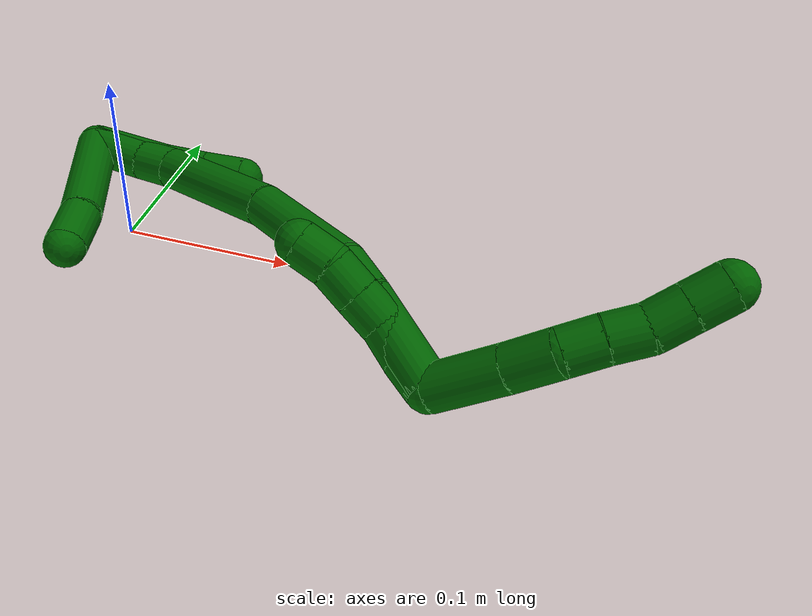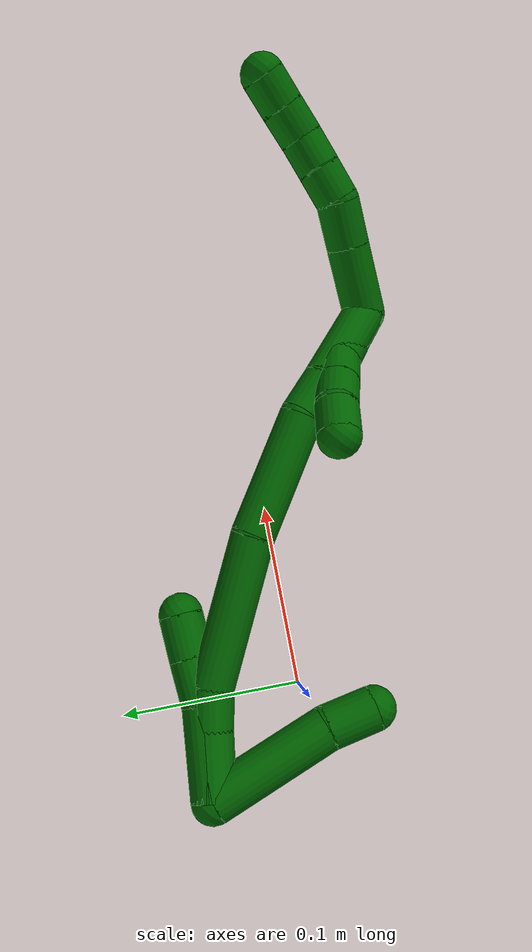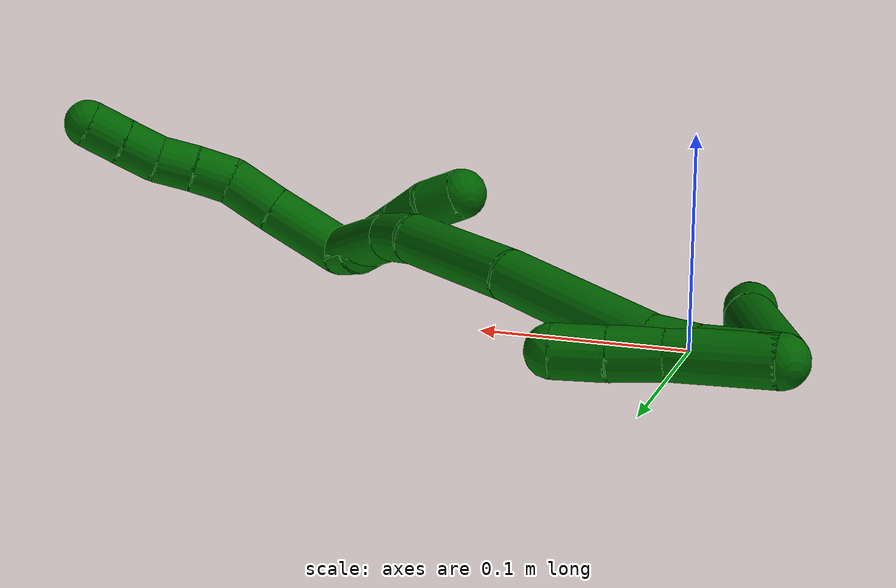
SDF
<sdf version="1.7">
 <world name="default">
  <model name="6">
   <static>0</static>
   <link name="6">
    <collision name="collision-cylinder-e_1_2_8">
     <pose>0.015691 0.005966 0.012447 -0.446975 0.849312 -0.204823</pose>
     <geometry><cylinder><radius>0.0125</radius><length>0.041796</length></cylinder></geometry>
     <surface>
      <friction><ode><mu>1.16</mu><mu2>1.16</mu2><slip1>0</slip1><slip2>0</slip2></ode></friction>
      <contact><ode><kp>1e+06</kp><kd>1</kd><max_vel>0</max_vel><min_depth>0.001</min_depth></ode></contact>
     </surface>
    </collision>
    <visual name="visual-cylinder-e_1_2_8">
     <pose>0.015691 0.005966 0.012447 -0.446975 0.849312 -0.204823</pose>
     <geometry><cylinder><radius>0.0125</radius><length>0.041796</length></cylinder></geometry>
     <material><ambient>0 0.392157 0.003922 1</ambient></material>
    </visual>
    <collision name="collision-cylinder-e_2_8_9">
     <pose>0.041317 0.016258 0.032953 -0.492536 0.826742 -0.219638</pose>
     <geometry><cylinder><radius>0.0125</radius><length>0.027009</length></cylinder></geometry>
     <surface>
      <friction><ode><mu>1.16</mu><mu2>1.16</mu2><slip1>0</slip1><slip2>0</slip2></ode></friction>
      <contact><ode><kp>1e+06</kp><kd>1</kd><max_vel>0</max_vel><min_depth>0.001</min_depth></ode></contact>
     </surface>
    </collision>
    <visual name="visual-cylinder-e_2_8_9">
     <pose>0.041317 0.016258 0.032953 -0.492536 0.826742 -0.219638</pose>
     <geometry><cylinder><radius>0.0125</radius><length>0.027009</length></cylinder></geometry>
     <material><ambient>0 0.392157 0.003922 1</ambient></material>
    </visual>
    <collision name="collision-cylinder-e_3_9_10">
     <pose>0.060716 0.022542 0.044647 -0.49452 1.15939 -0.327582</pose>
     <geometry><cylinder><radius>0.0125</radius><length>0.020648</length></cylinder></geometry>
     <surface>
      <friction><ode><mu>1.16</mu><mu2>1.16</mu2><slip1>0</slip1><slip2>0</slip2></ode></friction>
      <contact><ode><kp>1e+06</kp><kd>1</kd><max_vel>0</max_vel><min_depth>0.001</min_depth></ode></contact>
     </surface>
    </collision>
    <visual name="visual-cylinder-e_3_9_10">
     <pose>0.060716 0.022542 0.044647 -0.49452 1.15939 -0.327582</pose>
     <geometry><cylinder><radius>0.0125</radius><length>0.020648</length></cylinder></geometry>
     <material><ambient>0 0.392157 0.003922 1</ambient></material>
    </visual>
    <collision name="collision-cylinder-e_4_10_11">
     <pose>0.079531 0.025777 0.051781 -0.349509 1.19172 -0.238301</pose>
     <geometry><cylinder><radius>0.0125</radius><length>0.020136</length></cylinder></geometry>
     <surface>
      <friction><ode><mu>1.16</mu><mu2>1.16</mu2><slip1>0</slip1><slip2>0</slip2></ode></friction>
      <contact><ode><kp>1e+06</kp><kd>1</kd><max_vel>0</max_vel><min_depth>0.001</min_depth></ode></contact>
     </surface>
    </collision>
    <visual name="visual-cylinder-e_4_10_11">
     <pose>0.079531 0.025777 0.051781 -0.349509 1.19172 -0.238301</pose>
     <geometry><cylinder><radius>0.0125</radius><length>0.020136</length></cylinder></geometry>
     <material><ambient>0 0.392157 0.003922 1</ambient></material>
    </visual>
    <collision name="collision-cylinder-e_5_11_12">
     <pose>0.097773 0.030956 0.058368 -0.901634 1.06049 -0.55302</pose>
     <geometry><cylinder><radius>0.0125</radius><length>0.020374</length></cylinder></geometry>
     <surface>
      <friction><ode><mu>1.16</mu><mu2>1.16</mu2><slip1>0</slip1><slip2>0</slip2></ode></friction>
      <contact><ode><kp>1e+06</kp><kd>1</kd><max_vel>0</max_vel><min_depth>0.001</min_depth></ode></contact>
     </surface>
    </collision>
    <visual name="visual-cylinder-e_5_11_12">
     <pose>0.097773 0.030956 0.058368 -0.901634 1.06049 -0.55302</pose>
     <geometry><cylinder><radius>0.0125</radius><length>0.020374</length></cylinder></geometry>
     <material><ambient>0 0.392157 0.003922 1</ambient></material>
    </visual>
    <collision name="collision-cylinder-e_6_12_6">
     <pose>0.115358 0.038724 0.064588 -0.889648 1.05101 -0.53939</pose>
     <geometry><cylinder><radius>0.0125</radius><length>0.020037</length></cylinder></geometry>
     <surface>
      <friction><ode><mu>1.16</mu><mu2>1.16</mu2><slip1>0</slip1><slip2>0</slip2></ode></friction>
      <contact><ode><kp>1e+06</kp><kd>1</kd><max_vel>0</max_vel><min_depth>0.001</min_depth></ode></contact>
     </surface>
    </collision>
    <visual name="visual-cylinder-e_6_12_6">
     <pose>0.115358 0.038724 0.064588 -0.889648 1.05101 -0.53939</pose>
     <geometry><cylinder><radius>0.0125</radius><length>0.020037</length></cylinder></geometry>
     <material><ambient>0 0.392157 0.003922 1</ambient></material>
    </visual>
    <collision name="collision-cylinder-e_1_2_13">
     <pose>-0.002025 0.005598 -0.008035 -2.53312 -0.203949 0.630099</pose>
     <geometry><cylinder><radius>0.0125</radius><length>0.02</length></cylinder></geometry>
     <surface>
      <friction><ode><mu>1.16</mu><mu2>1.16</mu2><slip1>0</slip1><slip2>0</slip2></ode></friction>
      <contact><ode><kp>1e+06</kp><kd>1</kd><max_vel>0</max_vel><min_depth>0.001</min_depth></ode></contact>
     </surface>
    </collision>
    <visual name="visual-cylinder-e_1_2_13">
     <pose>-0.002025 0.005598 -0.008035 -2.53312 -0.203949 0.630099</pose>
     <geometry><cylinder><radius>0.0125</radius><length>0.02</length></cylinder></geometry>
     <material><ambient>0 0.392157 0.003922 1</ambient></material>
    </visual>
    <collision name="collision-cylinder-e_2_13_14">
     <pose>-0.006138 0.018578 -0.022485 -2.28613 -0.21023 0.45485</pose>
     <geometry><cylinder><radius>0.0125</radius><length>0.02</length></cylinder></geometry>
     <surface>
      <friction><ode><mu>1.16</mu><mu2>1.16</mu2><slip1>0</slip1><slip2>0</slip2></ode></friction>
      <contact><ode><kp>1e+06</kp><kd>1</kd><max_vel>0</max_vel><min_depth>0.001</min_depth></ode></contact>
     </surface>
    </collision>
    <visual name="visual-cylinder-e_2_13_14">
     <pose>-0.006138 0.018578 -0.022485 -2.28613 -0.21023 0.45485</pose>
     <geometry><cylinder><radius>0.0125</radius><length>0.02</length></cylinder></geometry>
     <material><ambient>0 0.392157 0.003922 1</ambient></material>
    </visual>
    <collision name="collision-cylinder-e_3_14_15">
     <pose>-0.012659 0.033747 -0.033338 -2.08898 -0.45944 0.765347</pose>
     <geometry><cylinder><radius>0.0125</radius><length>0.02</length></cylinder></geometry>
     <surface>
      <friction><ode><mu>1.16</mu><mu2>1.16</mu2><slip1>0</slip1><slip2>0</slip2></ode></friction>
      <contact><ode><kp>1e+06</kp><kd>1</kd><max_vel>0</max_vel><min_depth>0.001</min_depth></ode></contact>
     </surface>
    </collision>
    <visual name="visual-cylinder-e_3_14_15">
     <pose>-0.012659 0.033747 -0.033338 -2.08898 -0.45944 0.765347</pose>
     <geometry><cylinder><radius>0.0125</radius><length>0.02</length></cylinder></geometry>
     <material><ambient>0 0.392157 0.003922 1</ambient></material>
    </visual>
    <collision name="collision-cylinder-e_4_15_16">
     <pose>-0.021399 0.049463 -0.042088 -2.06865 -0.445084 0.727253</pose>
     <geometry><cylinder><radius>0.0125</radius><length>0.02</length></cylinder></geometry>
     <surface>
      <friction><ode><mu>1.16</mu><mu2>1.16</mu2><slip1>0</slip1><slip2>0</slip2></ode></friction>
      <contact><ode><kp>1e+06</kp><kd>1</kd><max_vel>0</max_vel><min_depth>0.001</min_depth></ode></contact>
     </surface>
    </collision>
    <visual name="visual-cylinder-e_4_15_16">
     <pose>-0.021399 0.049463 -0.042088 -2.06865 -0.445084 0.727253</pose>
     <geometry><cylinder><radius>0.0125</radius><length>0.02</length></cylinder></geometry>
     <material><ambient>0 0.392157 0.003922 1</ambient></material>
    </visual>
    <collision name="collision-cylinder-e_5_16_5">
     <pose>-0.031749 0.063557 -0.051444 -2.25685 -0.64916 1.23528</pose>
     <geometry><cylinder><radius>0.0125</radius><length>0.02</length></cylinder></geometry>
     <surface>
      <friction><ode><mu>1.16</mu><mu2>1.16</mu2><slip1>0</slip1><slip2>0</slip2></ode></friction>
      <contact><ode><kp>1e+06</kp><kd>1</kd><max_vel>0</max_vel><min_depth>0.001</min_depth></ode></contact>
     </surface>
    </collision>
    <visual name="visual-cylinder-e_5_16_5">
     <pose>-0.031749 0.063557 -0.051444 -2.25685 -0.64916 1.23528</pose>
     <geometry><cylinder><radius>0.0125</radius><length>0.02</length></cylinder></geometry>
     <material><ambient>0 0.392157 0.003922 1</ambient></material>
    </visual>
    <collision name="collision-cylinder-e_1_2_17">
     <pose>-0.00502 0.018618 -0.021369 -2.4249 -0.17531 0.460964</pose>
     <geometry><cylinder><radius>0.0125</radius><length>0.057567</length></cylinder></geometry>
     <surface>
      <friction><ode><mu>1.16</mu><mu2>1.16</mu2><slip1>0</slip1><slip2>0</slip2></ode></friction>
      <contact><ode><kp>1e+06</kp><kd>1</kd><max_vel>0</max_vel><min_depth>0.001</min_depth></ode></contact>
     </surface>
    </collision>
    <visual name="visual-cylinder-e_1_2_17">
     <pose>-0.00502 0.018618 -0.021369 -2.4249 -0.17531 0.460964</pose>
     <geometry><cylinder><radius>0.0125</radius><length>0.057567</length></cylinder></geometry>
     <material><ambient>0 0.392157 0.003922 1</ambient></material>
    </visual>
    <collision name="collision-cylinder-e_2_17_18">
     <pose>-0.011911 0.04365 -0.053766 -2.61469 -0.145566 0.528022</pose>
     <geometry><cylinder><radius>0.0125</radius><length>0.025786</length></cylinder></geometry>
     <surface>
      <friction><ode><mu>1.16</mu><mu2>1.16</mu2><slip1>0</slip1><slip2>0</slip2></ode></friction>
      <contact><ode><kp>1e+06</kp><kd>1</kd><max_vel>0</max_vel><min_depth>0.001</min_depth></ode></contact>
     </surface>
    </collision>
    <visual name="visual-cylinder-e_2_17_18">
     <pose>-0.011911 0.04365 -0.053766 -2.61469 -0.145566 0.528022</pose>
     <geometry><cylinder><radius>0.0125</radius><length>0.025786</length></cylinder></geometry>
     <material><ambient>0 0.392157 0.003922 1</ambient></material>
    </visual>
    <collision name="collision-cylinder-e_3_18_19">
     <pose>-0.025071 0.060914 -0.097121 -2.81782 -0.319738 1.55803</pose>
     <geometry><cylinder><radius>0.0125</radius><length>0.071842</length></cylinder></geometry>
     <surface>
      <friction><ode><mu>1.16</mu><mu2>1.16</mu2><slip1>0</slip1><slip2>0</slip2></ode></friction>
      <contact><ode><kp>1e+06</kp><kd>1</kd><max_vel>0</max_vel><min_depth>0.001</min_depth></ode></contact>
     </surface>
    </collision>
    <visual name="visual-cylinder-e_3_18_19">
     <pose>-0.025071 0.060914 -0.097121 -2.81782 -0.319738 1.55803</pose>
     <geometry><cylinder><radius>0.0125</radius><length>0.071842</length></cylinder></geometry>
     <material><ambient>0 0.392157 0.003922 1</ambient></material>
    </visual>
    <collision name="collision-cylinder-e_4_19_20">
     <pose>-0.054492 0.079376 -0.167556 -2.94441 -0.436529 2.30261</pose>
     <geometry><cylinder><radius>0.0125</radius><length>0.085763</length></cylinder></geometry>
     <surface>
      <friction><ode><mu>1.16</mu><mu2>1.16</mu2><slip1>0</slip1><slip2>0</slip2></ode></friction>
      <contact><ode><kp>1e+06</kp><kd>1</kd><max_vel>0</max_vel><min_depth>0.001</min_depth></ode></contact>
     </surface>
    </collision>
    <visual name="visual-cylinder-e_4_19_20">
     <pose>-0.054492 0.079376 -0.167556 -2.94441 -0.436529 2.30261</pose>
     <geometry><cylinder><radius>0.0125</radius><length>0.085763</length></cylinder></geometry>
     <material><ambient>0 0.392157 0.003922 1</ambient></material>
    </visual>
    <collision name="collision-cylinder-e_5_20_21">
     <pose>-0.079864 0.08962 -0.214138 -2.84057 -0.684462 2.33666</pose>
     <geometry><cylinder><radius>0.0125</radius><length>0.022907</length></cylinder></geometry>
     <surface>
      <friction><ode><mu>1.16</mu><mu2>1.16</mu2><slip1>0</slip1><slip2>0</slip2></ode></friction>
      <contact><ode><kp>1e+06</kp><kd>1</kd><max_vel>0</max_vel><min_depth>0.001</min_depth></ode></contact>
     </surface>
    </collision>
    <visual name="visual-cylinder-e_5_20_21">
     <pose>-0.079864 0.08962 -0.214138 -2.84057 -0.684462 2.33666</pose>
     <geometry><cylinder><radius>0.0125</radius><length>0.022907</length></cylinder></geometry>
     <material><ambient>0 0.392157 0.003922 1</ambient></material>
    </visual>
    <collision name="collision-cylinder-e_6_21_1">
     <pose>-0.099507 0.097956 -0.234449 -2.69245 -0.75653 2.09822</pose>
     <geometry><cylinder><radius>0.0125</radius><length>0.036135</length></cylinder></geometry>
     <surface>
      <friction><ode><mu>1.16</mu><mu2>1.16</mu2><slip1>0</slip1><slip2>0</slip2></ode></friction>
      <contact><ode><kp>1e+06</kp><kd>1</kd><max_vel>0</max_vel><min_depth>0.001</min_depth></ode></contact>
     </surface>
    </collision>
    <visual name="visual-cylinder-e_6_21_1">
     <pose>-0.099507 0.097956 -0.234449 -2.69245 -0.75653 2.09822</pose>
     <geometry><cylinder><radius>0.0125</radius><length>0.036135</length></cylinder></geometry>
     <material><ambient>0 0.392157 0.003922 1</ambient></material>
    </visual>
    <collision name="collision-cylinder-e_1_1_22">
     <pose>-0.093885 0.096 -0.23123 0.470754 0.817764 0.207088</pose>
     <geometry><cylinder><radius>0.0125</radius><length>0.049405</length></cylinder></geometry>
     <surface>
      <friction><ode><mu>1.16</mu><mu2>1.16</mu2><slip1>0</slip1><slip2>0</slip2></ode></friction>
      <contact><ode><kp>1e+06</kp><kd>1</kd><max_vel>0</max_vel><min_depth>0.001</min_depth></ode></contact>
     </surface>
    </collision>
    <visual name="visual-cylinder-e_1_1_22">
     <pose>-0.093885 0.096 -0.23123 0.470754 0.817764 0.207088</pose>
     <geometry><cylinder><radius>0.0125</radius><length>0.049405</length></cylinder></geometry>
     <material><ambient>0 0.392157 0.003922 1</ambient></material>
    </visual>
    <collision name="collision-cylinder-e_2_22_23">
     <pose>-0.065128 0.084605 -0.210208 0.558964 0.990443 0.307571</pose>
     <geometry><cylinder><radius>0.0125</radius><length>0.02567</length></cylinder></geometry>
     <surface>
      <friction><ode><mu>1.16</mu><mu2>1.16</mu2><slip1>0</slip1><slip2>0</slip2></ode></friction>
      <contact><ode><kp>1e+06</kp><kd>1</kd><max_vel>0</max_vel><min_depth>0.001</min_depth></ode></contact>
     </surface>
    </collision>
    <visual name="visual-cylinder-e_2_22_23">
     <pose>-0.065128 0.084605 -0.210208 0.558964 0.990443 0.307571</pose>
     <geometry><cylinder><radius>0.0125</radius><length>0.02567</length></cylinder></geometry>
     <material><ambient>0 0.392157 0.003922 1</ambient></material>
    </visual>
    <collision name="collision-cylinder-e_3_23_4">
     <pose>-0.044125 0.077799 -0.197885 0.450534 0.968488 0.239923</pose>
     <geometry><cylinder><radius>0.0125</radius><length>0.024925</length></cylinder></geometry>
     <surface>
      <friction><ode><mu>1.16</mu><mu2>1.16</mu2><slip1>0</slip1><slip2>0</slip2></ode></friction>
      <contact><ode><kp>1e+06</kp><kd>1</kd><max_vel>0</max_vel><min_depth>0.001</min_depth></ode></contact>
     </surface>
    </collision>
    <visual name="visual-cylinder-e_3_23_4">
     <pose>-0.044125 0.077799 -0.197885 0.450534 0.968488 0.239923</pose>
     <geometry><cylinder><radius>0.0125</radius><length>0.024925</length></cylinder></geometry>
     <material><ambient>0 0.392157 0.003922 1</ambient></material>
    </visual>
    <collision name="collision-cylinder-e_1_1_24">
     <pose>-0.123241 0.090574 -0.214713 0.392954 -0.32017 -0.064256</pose>
     <geometry><cylinder><radius>0.0125</radius><length>0.072014</length></cylinder></geometry>
     <surface>
      <friction><ode><mu>1.16</mu><mu2>1.16</mu2><slip1>0</slip1><slip2>0</slip2></ode></friction>
      <contact><ode><kp>1e+06</kp><kd>1</kd><max_vel>0</max_vel><min_depth>0.001</min_depth></ode></contact>
     </surface>
    </collision>
    <visual name="visual-cylinder-e_1_1_24">
     <pose>-0.123241 0.090574 -0.214713 0.392954 -0.32017 -0.064256</pose>
     <geometry><cylinder><radius>0.0125</radius><length>0.072014</length></cylinder></geometry>
     <material><ambient>0 0.392157 0.003922 1</ambient></material>
    </visual>
    <collision name="collision-cylinder-e_2_24_3">
     <pose>-0.141182 0.072238 -0.171979 0.439628 -0.491859 -0.112046</pose>
     <geometry><cylinder><radius>0.0125</radius><length>0.027986</length></cylinder></geometry>
     <surface>
      <friction><ode><mu>1.16</mu><mu2>1.16</mu2><slip1>0</slip1><slip2>0</slip2></ode></friction>
      <contact><ode><kp>1e+06</kp><kd>1</kd><max_vel>0</max_vel><min_depth>0.001</min_depth></ode></contact>
     </surface>
    </collision>
    <visual name="visual-cylinder-e_2_24_3">
     <pose>-0.141182 0.072238 -0.171979 0.439628 -0.491859 -0.112046</pose>
     <geometry><cylinder><radius>0.0125</radius><length>0.027986</length></cylinder></geometry>
     <material><ambient>0 0.392157 0.003922 1</ambient></material>
    </visual>
    <collision name="collision-sphere-3">
     <pose>-0.14779 0.066988 -0.160818 0 -0 0</pose>
     <geometry><sphere><radius>0.0125</radius></sphere></geometry>
     <surface>
      <friction><ode><mu>1.16</mu><mu2>1.16</mu2><slip1>0</slip1><slip2>0</slip2></ode></friction>
      <contact><ode><kp>1e+06</kp><kd>1</kd><max_vel>0</max_vel><min_depth>0.001</min_depth></ode></contact>
     </surface>
    </collision>
    <visual name="visual-sphere-3">
     <pose>-0.14779 0.066988 -0.160818 0 -0 0</pose>
     <geometry><sphere><radius>0.0125</radius></sphere></geometry>
     <material><ambient>0 0.392157 0.003922 1</ambient></material>
    </visual>
    <collision name="collision-sphere-24">
     <pose>-0.134573 0.077487 -0.183141 0 -0 0</pose>
     <geometry><sphere><radius>0.0125</radius></sphere></geometry>
     <surface>
      <friction><ode><mu>1.16</mu><mu2>1.16</mu2><slip1>0</slip1><slip2>0</slip2></ode></friction>
      <contact><ode><kp>1e+06</kp><kd>1</kd><max_vel>0</max_vel><min_depth>0.001</min_depth></ode></contact>
     </surface>
    </collision>
    <visual name="visual-sphere-24">
     <pose>-0.134573 0.077487 -0.183141 0 -0 0</pose>
     <geometry><sphere><radius>0.0125</radius></sphere></geometry>
     <material><ambient>0 0.392157 0.003922 1</ambient></material>
    </visual>
    <collision name="collision-sphere-4">
     <pose>-0.033856 0.074724 -0.191529 0 -0 0</pose>
     <geometry><sphere><radius>0.0125</radius></sphere></geometry>
     <surface>
      <friction><ode><mu>1.16</mu><mu2>1.16</mu2><slip1>0</slip1><slip2>0</slip2></ode></friction>
      <contact><ode><kp>1e+06</kp><kd>1</kd><max_vel>0</max_vel><min_depth>0.001</min_depth></ode></contact>
     </surface>
    </collision>
    <visual name="visual-sphere-4">
     <pose>-0.033856 0.074724 -0.191529 0 -0 0</pose>
     <geometry><sphere><radius>0.0125</radius></sphere></geometry>
     <material><ambient>0 0.392157 0.003922 1</ambient></material>
    </visual>
    <collision name="collision-sphere-23">
     <pose>-0.054395 0.080873 -0.204241 0 -0 0</pose>
     <geometry><sphere><radius>0.0125</radius></sphere></geometry>
     <surface>
      <friction><ode><mu>1.16</mu><mu2>1.16</mu2><slip1>0</slip1><slip2>0</slip2></ode></friction>
      <contact><ode><kp>1e+06</kp><kd>1</kd><max_vel>0</max_vel><min_depth>0.001</min_depth></ode></contact>
     </surface>
    </collision>
    <visual name="visual-sphere-23">
     <pose>-0.054395 0.080873 -0.204241 0 -0 0</pose>
     <geometry><sphere><radius>0.0125</radius></sphere></geometry>
     <material><ambient>0 0.392157 0.003922 1</ambient></material>
    </visual>
    <collision name="collision-sphere-22">
     <pose>-0.075862 0.088338 -0.216174 0 -0 0</pose>
     <geometry><sphere><radius>0.0125</radius></sphere></geometry>
     <surface>
      <friction><ode><mu>1.16</mu><mu2>1.16</mu2><slip1>0</slip1><slip2>0</slip2></ode></friction>
      <contact><ode><kp>1e+06</kp><kd>1</kd><max_vel>0</max_vel><min_depth>0.001</min_depth></ode></contact>
     </surface>
    </collision>
    <visual name="visual-sphere-22">
     <pose>-0.075862 0.088338 -0.216174 0 -0 0</pose>
     <geometry><sphere><radius>0.0125</radius></sphere></geometry>
     <material><ambient>0 0.392157 0.003922 1</ambient></material>
    </visual>
    <collision name="collision-sphere-1">
     <pose>-0.111909 0.103661 -0.246285 0 -0 0</pose>
     <geometry><sphere><radius>0.0125</radius></sphere></geometry>
     <surface>
      <friction><ode><mu>1.16</mu><mu2>1.16</mu2><slip1>0</slip1><slip2>0</slip2></ode></friction>
      <contact><ode><kp>1e+06</kp><kd>1</kd><max_vel>0</max_vel><min_depth>0.001</min_depth></ode></contact>
     </surface>
    </collision>
    <visual name="visual-sphere-1">
     <pose>-0.111909 0.103661 -0.246285 0 -0 0</pose>
     <geometry><sphere><radius>0.0125</radius></sphere></geometry>
     <material><ambient>0 0.392157 0.003922 1</ambient></material>
    </visual>
    <collision name="collision-sphere-21">
     <pose>-0.087106 0.092252 -0.222613 0 -0 0</pose>
     <geometry><sphere><radius>0.0125</radius></sphere></geometry>
     <surface>
      <friction><ode><mu>1.16</mu><mu2>1.16</mu2><slip1>0</slip1><slip2>0</slip2></ode></friction>
      <contact><ode><kp>1e+06</kp><kd>1</kd><max_vel>0</max_vel><min_depth>0.001</min_depth></ode></contact>
     </surface>
    </collision>
    <visual name="visual-sphere-21">
     <pose>-0.087106 0.092252 -0.222613 0 -0 0</pose>
     <geometry><sphere><radius>0.0125</radius></sphere></geometry>
     <material><ambient>0 0.392157 0.003922 1</ambient></material>
    </visual>
    <collision name="collision-sphere-12">
     <pose>0.106662 0.034858 0.061455 0 -0 0</pose>
     <geometry><sphere><radius>0.0125</radius></sphere></geometry>
     <surface>
      <friction><ode><mu>1.16</mu><mu2>1.16</mu2><slip1>0</slip1><slip2>0</slip2></ode></friction>
      <contact><ode><kp>1e+06</kp><kd>1</kd><max_vel>0</max_vel><min_depth>0.001</min_depth></ode></contact>
     </surface>
    </collision>
    <visual name="visual-sphere-12">
     <pose>0.106662 0.034858 0.061455 0 -0 0</pose>
     <geometry><sphere><radius>0.0125</radius></sphere></geometry>
     <material><ambient>0 0.392157 0.003922 1</ambient></material>
    </visual>
    <collision name="collision-sphere-11">
     <pose>0.088884 0.027053 0.055281 0 -0 0</pose>
     <geometry><sphere><radius>0.0125</radius></sphere></geometry>
     <surface>
      <friction><ode><mu>1.16</mu><mu2>1.16</mu2><slip1>0</slip1><slip2>0</slip2></ode></friction>
      <contact><ode><kp>1e+06</kp><kd>1</kd><max_vel>0</max_vel><min_depth>0.001</min_depth></ode></contact>
     </surface>
    </collision>
    <visual name="visual-sphere-11">
     <pose>0.088884 0.027053 0.055281 0 -0 0</pose>
     <geometry><sphere><radius>0.0125</radius></sphere></geometry>
     <material><ambient>0 0.392157 0.003922 1</ambient></material>
    </visual>
    <collision name="collision-sphere-10">
     <pose>0.070178 0.024501 0.04828 0 -0 0</pose>
     <geometry><sphere><radius>0.0125</radius></sphere></geometry>
     <surface>
      <friction><ode><mu>1.16</mu><mu2>1.16</mu2><slip1>0</slip1><slip2>0</slip2></ode></friction>
      <contact><ode><kp>1e+06</kp><kd>1</kd><max_vel>0</max_vel><min_depth>0.001</min_depth></ode></contact>
     </surface>
    </collision>
    <visual name="visual-sphere-10">
     <pose>0.070178 0.024501 0.04828 0 -0 0</pose>
     <geometry><sphere><radius>0.0125</radius></sphere></geometry>
     <material><ambient>0 0.392157 0.003922 1</ambient></material>
    </visual>
    <collision name="collision-sphere-9">
     <pose>0.051253 0.020583 0.041013 0 -0 0</pose>
     <geometry><sphere><radius>0.0125</radius></sphere></geometry>
     <surface>
      <friction><ode><mu>1.16</mu><mu2>1.16</mu2><slip1>0</slip1><slip2>0</slip2></ode></friction>
      <contact><ode><kp>1e+06</kp><kd>1</kd><max_vel>0</max_vel><min_depth>0.001</min_depth></ode></contact>
     </surface>
    </collision>
    <visual name="visual-sphere-9">
     <pose>0.051253 0.020583 0.041013 0 -0 0</pose>
     <geometry><sphere><radius>0.0125</radius></sphere></geometry>
     <material><ambient>0 0.392157 0.003922 1</ambient></material>
    </visual>
    <collision name="collision-sphere-2">
     <geometry><sphere><radius>0.0125</radius></sphere></geometry>
     <surface>
      <friction><ode><mu>1.16</mu><mu2>1.16</mu2><slip1>0</slip1><slip2>0</slip2></ode></friction>
      <contact><ode><kp>1e+06</kp><kd>1</kd><max_vel>0</max_vel><min_depth>0.001</min_depth></ode></contact>
     </surface>
    </collision>
    <visual name="visual-sphere-2">
     <geometry><sphere><radius>0.0125</radius></sphere></geometry>
     <material><ambient>0 0.392157 0.003922 1</ambient></material>
    </visual>
    <collision name="collision-sphere-19">
     <pose>-0.036362 0.071763 -0.129449 0 -0 0</pose>
     <geometry><sphere><radius>0.0125</radius></sphere></geometry>
     <surface>
      <friction><ode><mu>1.16</mu><mu2>1.16</mu2><slip1>0</slip1><slip2>0</slip2></ode></friction>
      <contact><ode><kp>1e+06</kp><kd>1</kd><max_vel>0</max_vel><min_depth>0.001</min_depth></ode></contact>
     </surface>
    </collision>
    <visual name="visual-sphere-19">
     <pose>-0.036362 0.071763 -0.129449 0 -0 0</pose>
     <geometry><sphere><radius>0.0125</radius></sphere></geometry>
     <material><ambient>0 0.392157 0.003922 1</ambient></material>
    </visual>
    <collision name="collision-sphere-8">
     <pose>0.031382 0.011933 0.024894 0 -0 0</pose>
     <geometry><sphere><radius>0.0125</radius></sphere></geometry>
     <surface>
      <friction><ode><mu>1.16</mu><mu2>1.16</mu2><slip1>0</slip1><slip2>0</slip2></ode></friction>
      <contact><ode><kp>1e+06</kp><kd>1</kd><max_vel>0</max_vel><min_depth>0.001</min_depth></ode></contact>
     </surface>
    </collision>
    <visual name="visual-sphere-8">
     <pose>0.031382 0.011933 0.024894 0 -0 0</pose>
     <geometry><sphere><radius>0.0125</radius></sphere></geometry>
     <material><ambient>0 0.392157 0.003922 1</ambient></material>
    </visual>
    <collision name="collision-sphere-6">
     <pose>0.124053 0.04259 0.067721 0 -0 0</pose>
     <geometry><sphere><radius>0.0125</radius></sphere></geometry>
     <surface>
      <friction><ode><mu>1.16</mu><mu2>1.16</mu2><slip1>0</slip1><slip2>0</slip2></ode></friction>
      <contact><ode><kp>1e+06</kp><kd>1</kd><max_vel>0</max_vel><min_depth>0.001</min_depth></ode></contact>
     </surface>
    </collision>
    <visual name="visual-sphere-6">
     <pose>0.124053 0.04259 0.067721 0 -0 0</pose>
     <geometry><sphere><radius>0.0125</radius></sphere></geometry>
     <material><ambient>0 0.392157 0.003922 1</ambient></material>
    </visual>
    <collision name="collision-sphere-13">
     <pose>-0.004051 0.011195 -0.01607 0 -0 0</pose>
     <geometry><sphere><radius>0.0125</radius></sphere></geometry>
     <surface>
      <friction><ode><mu>1.16</mu><mu2>1.16</mu2><slip1>0</slip1><slip2>0</slip2></ode></friction>
      <contact><ode><kp>1e+06</kp><kd>1</kd><max_vel>0</max_vel><min_depth>0.001</min_depth></ode></contact>
     </surface>
    </collision>
    <visual name="visual-sphere-13">
     <pose>-0.004051 0.011195 -0.01607 0 -0 0</pose>
     <geometry><sphere><radius>0.0125</radius></sphere></geometry>
     <material><ambient>0 0.392157 0.003922 1</ambient></material>
    </visual>
    <collision name="collision-sphere-14">
     <pose>-0.008224 0.025961 -0.028899 0 -0 0</pose>
     <geometry><sphere><radius>0.0125</radius></sphere></geometry>
     <surface>
      <friction><ode><mu>1.16</mu><mu2>1.16</mu2><slip1>0</slip1><slip2>0</slip2></ode></friction>
      <contact><ode><kp>1e+06</kp><kd>1</kd><max_vel>0</max_vel><min_depth>0.001</min_depth></ode></contact>
     </surface>
    </collision>
    <visual name="visual-sphere-14">
     <pose>-0.008224 0.025961 -0.028899 0 -0 0</pose>
     <geometry><sphere><radius>0.0125</radius></sphere></geometry>
     <material><ambient>0 0.392157 0.003922 1</ambient></material>
    </visual>
    <collision name="collision-sphere-15">
     <pose>-0.017093 0.041533 -0.037778 0 -0 0</pose>
     <geometry><sphere><radius>0.0125</radius></sphere></geometry>
     <surface>
      <friction><ode><mu>1.16</mu><mu2>1.16</mu2><slip1>0</slip1><slip2>0</slip2></ode></friction>
      <contact><ode><kp>1e+06</kp><kd>1</kd><max_vel>0</max_vel><min_depth>0.001</min_depth></ode></contact>
     </surface>
    </collision>
    <visual name="visual-sphere-15">
     <pose>-0.017093 0.041533 -0.037778 0 -0 0</pose>
     <geometry><sphere><radius>0.0125</radius></sphere></geometry>
     <material><ambient>0 0.392157 0.003922 1</ambient></material>
    </visual>
    <collision name="collision-sphere-16">
     <pose>-0.025704 0.057393 -0.046398 0 -0 0</pose>
     <geometry><sphere><radius>0.0125</radius></sphere></geometry>
     <surface>
      <friction><ode><mu>1.16</mu><mu2>1.16</mu2><slip1>0</slip1><slip2>0</slip2></ode></friction>
      <contact><ode><kp>1e+06</kp><kd>1</kd><max_vel>0</max_vel><min_depth>0.001</min_depth></ode></contact>
     </surface>
    </collision>
    <visual name="visual-sphere-16">
     <pose>-0.025704 0.057393 -0.046398 0 -0 0</pose>
     <geometry><sphere><radius>0.0125</radius></sphere></geometry>
     <material><ambient>0 0.392157 0.003922 1</ambient></material>
    </visual>
    <collision name="collision-sphere-5">
     <pose>-0.037794 0.069721 -0.056491 0 -0 0</pose>
     <geometry><sphere><radius>0.0125</radius></sphere></geometry>
     <surface>
      <friction><ode><mu>1.16</mu><mu2>1.16</mu2><slip1>0</slip1><slip2>0</slip2></ode></friction>
      <contact><ode><kp>1e+06</kp><kd>1</kd><max_vel>0</max_vel><min_depth>0.001</min_depth></ode></contact>
     </surface>
    </collision>
    <visual name="visual-sphere-5">
     <pose>-0.037794 0.069721 -0.056491 0 -0 0</pose>
     <geometry><sphere><radius>0.0125</radius></sphere></geometry>
     <material><ambient>0 0.392157 0.003922 1</ambient></material>
    </visual>
    <collision name="collision-sphere-17">
     <pose>-0.01004 0.037235 -0.042739 0 -0 0</pose>
     <geometry><sphere><radius>0.0125</radius></sphere></geometry>
     <surface>
      <friction><ode><mu>1.16</mu><mu2>1.16</mu2><slip1>0</slip1><slip2>0</slip2></ode></friction>
      <contact><ode><kp>1e+06</kp><kd>1</kd><max_vel>0</max_vel><min_depth>0.001</min_depth></ode></contact>
     </surface>
    </collision>
    <visual name="visual-sphere-17">
     <pose>-0.01004 0.037235 -0.042739 0 -0 0</pose>
     <geometry><sphere><radius>0.0125</radius></sphere></geometry>
     <material><ambient>0 0.392157 0.003922 1</ambient></material>
    </visual>
    <collision name="collision-sphere-18">
     <pose>-0.013781 0.050065 -0.064792 0 -0 0</pose>
     <geometry><sphere><radius>0.0125</radius></sphere></geometry>
     <surface>
      <friction><ode><mu>1.16</mu><mu2>1.16</mu2><slip1>0</slip1><slip2>0</slip2></ode></friction>
      <contact><ode><kp>1e+06</kp><kd>1</kd><max_vel>0</max_vel><min_depth>0.001</min_depth></ode></contact>
     </surface>
    </collision>
    <visual name="visual-sphere-18">
     <pose>-0.013781 0.050065 -0.064792 0 -0 0</pose>
     <geometry><sphere><radius>0.0125</radius></sphere></geometry>
     <material><ambient>0 0.392157 0.003922 1</ambient></material>
    </visual>
    <collision name="collision-sphere-20">
     <pose>-0.072622 0.086989 -0.205664 0 -0 0</pose>
     <geometry><sphere><radius>0.0125</radius></sphere></geometry>
     <surface>
      <friction><ode><mu>1.16</mu><mu2>1.16</mu2><slip1>0</slip1><slip2>0</slip2></ode></friction>
      <contact><ode><kp>1e+06</kp><kd>1</kd><max_vel>0</max_vel><min_depth>0.001</min_depth></ode></contact>
     </surface>
    </collision>
    <visual name="visual-sphere-20">
     <pose>-0.072622 0.086989 -0.205664 0 -0 0</pose>
     <geometry><sphere><radius>0.0125</radius></sphere></geometry>
     <material><ambient>0 0.392157 0.003922 1</ambient></material>
    </visual>
    <inertial>
     <pose>-0.033708 0.05716 -0.102211 0 -0 0</pose>
     <mass>0.75</mass>
     <inertia><ixx>0.000127</ixx><ixy>0</ixy><ixz>0</ixz><iyy>0.000196</iyy><iyz>0</iyz><izz>-2e-06</izz></inertia>
    </inertial>
   </link>
   <pose>0.203811 -0.081001 0.011494 1.20295 -0.025083 0.676816</pose>
  </model>
 </world>
</sdf>
